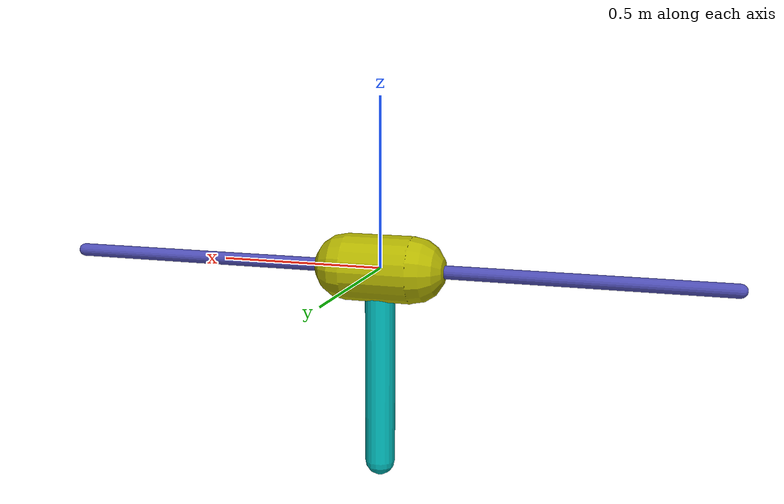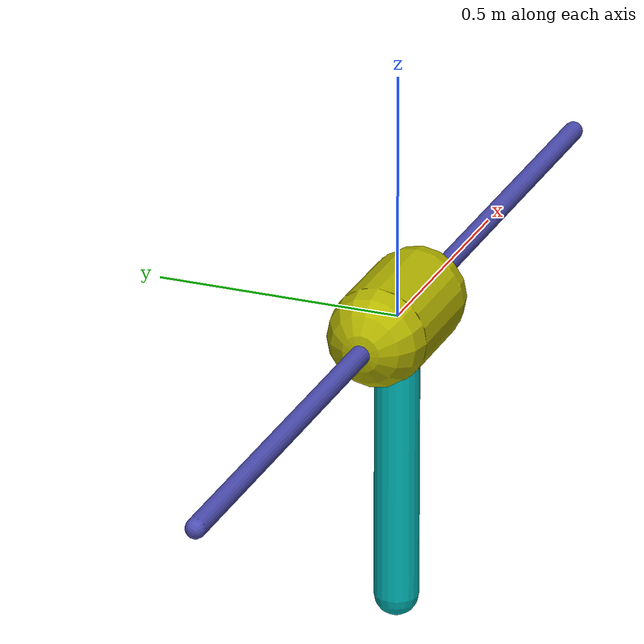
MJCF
<mujoco model="cartpole">
  <compiler coordinate="local" inertiafromgeom="true"/>
  <custom>
    <numeric data="2" name="frame_skip"/>
  </custom>
  <default>
    <joint damping="0.05"/>
    <geom contype="0" friction="1 0.1 0.1" rgba="0.7 0.7 0 1"/>
  </default>
  <option gravity="0 0 -9.81" integrator="RK4" timestep="0.01"/>
  <size nstack="3000"/>
  <worldbody>
    <geom name="floor" pos="0 -2.0 -3.0" rgba="0.8 0.9 0.8 1" size="20 20 20" type="plane"/>
    <geom name="rail" pos="0 0 0" quat="0.707 0 0.707 0" rgba="0.3 0.3 0.7 1" size="0.02 1" type="capsule"/>
    <body name="cart" pos="0 0 0">
      <joint axis="1 0 0" limited="true" margin="0.01" name="slider" pos="0 0 0" range="-1 1" type="slide"/>
      <geom name="cart" pos="0 0 0" quat="0.707 0 0.707 0" size="0.1 0.1" type="capsule" mass="5"/> <!--mass="0.5"/-->
      <body name="pole" pos="0 0 0">
        <joint axis="0 1 0" name="hinge" pos="0 0 0" type="hinge"/>
        <geom fromto="0 0 0 0 0 -0.6" name="cpole" rgba="0 0.7 0.7 1" size="0.045 0.3" type="capsule" mass="1"/> <!--mass="0.1"/-->
        <site name="tip" pos="0 0 -0.6" size="0.01 0.01"/>
      </body>
    </body>
  </worldbody>
  <actuator>
    <motor ctrllimited="true" ctrlrange="-1 1" gear="100" joint="slider" name="slide"/>
  </actuator>
</mujoco>
